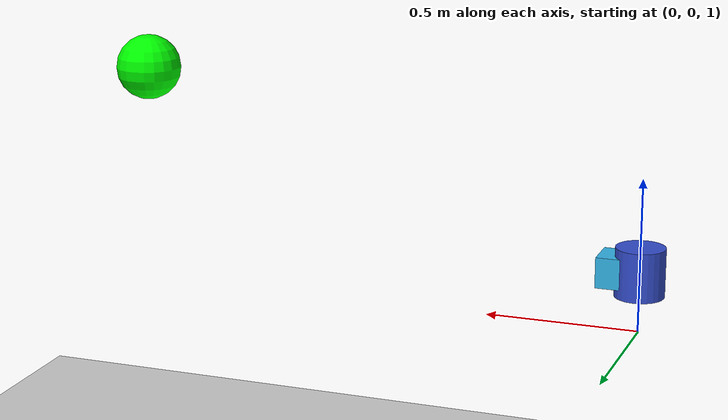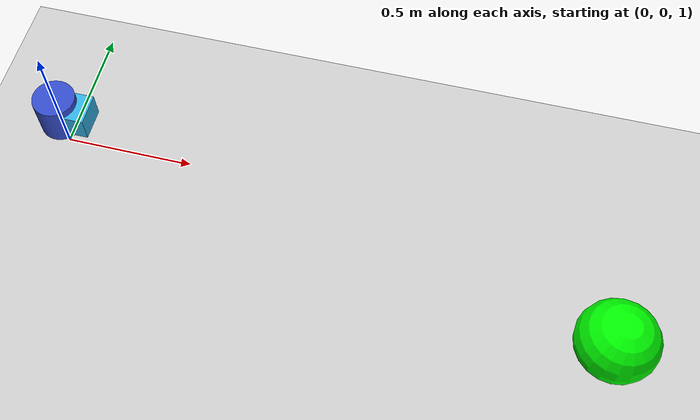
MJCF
<mujoco model="pan_tilt_tracker">
    <compiler angle="radian"/>

    <option
        timestep="0.002"
        gravity="0 0 0"
    />

    <visual>
        <headlight
            ambient="0.3 0.3 0.3"
            diffuse="0.8 0.8 0.8"
        />
    </visual>

    <worldbody>
        <geom
            name="floor"
            type="plane"
            size="3 3 0.1"
            rgba="0.8 0.8 0.8 1"
        />

        <body
            name="pan_body"
            pos="0 0 1.2"
        >
            <joint
                name="pan_joint"
                type="hinge"
                axis="0 0 1"
                damping="0.05"
                limited="true"
                range="-1.57 1.57"
            />

            <geom
                name="pan_mount"
                type="cylinder"
                size="0.08 0.08"
                rgba="0.2 0.3 0.8 1"
                contype="0"
                conaffinity="0"
            />

            <body name="tilt_body">
                <joint
                    name="tilt_joint"
                    type="hinge"
                    axis="0 1 0"
                    damping="0.05"
                    limited="true"
                    range="-1.05 1.05"
                />

                <geom
                    name="camera_housing"
                    type="box"
                    pos="0.05 0 0"
                    size="0.08 0.06 0.05"
                    rgba="0.2 0.7 0.9 1"
                    contype="0"
                    conaffinity="0"
                />

                <camera
                    name="tracking_camera"
                    pos="0.14 0 0"
                    xyaxes="0 -1 0 0 0 1"
                    fovy="60"
                />
            </body>
        </body>

        <body
            name="target"
            pos="2 -0.6 1.6"
            mocap="true"
        >
            <geom
                name="target_geom"
                type="sphere"
                size="0.12"
                rgba="0 1 0 1"
            />
        </body>
    </worldbody>

    <actuator>
        <motor
            name="pan_motor"
            joint="pan_joint"
            gear="1"
            ctrllimited="true"
            ctrlrange="-1 1"
        />

        <motor
            name="tilt_motor"
            joint="tilt_joint"
            gear="1"
            ctrllimited="true"
            ctrlrange="-1 1"
        />
    </actuator>
</mujoco>
